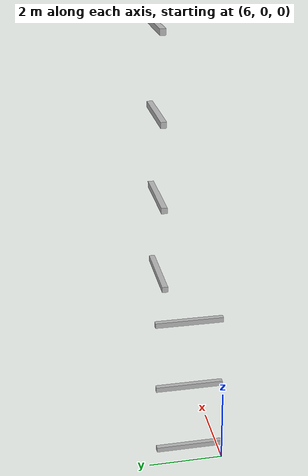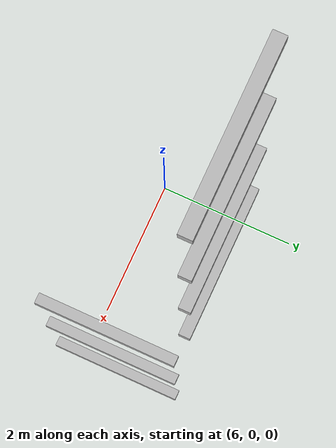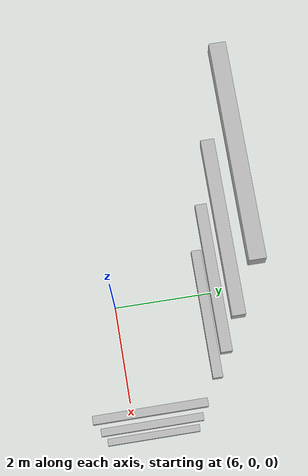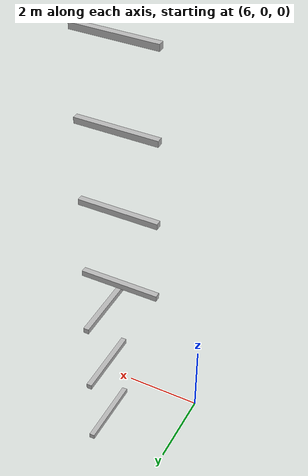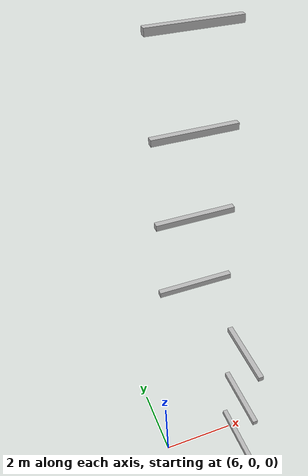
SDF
<sdf version="1.7">
 <world name="default">
  <model name="orthogonal_747_2.000.15_TS">
   <static>1</static>
   <link name="y_link_0_2_7">
    <inertial>
     <mass>1</mass>
     <inertia>
      <ixx>0.166667</ixx>
      <ixy>0</ixy>
      <ixz>0</ixz>
      <iyy>0.166667</iyy>
      <iyz>0</iyz>
      <izz>0.166667</izz>
     </inertia>
    </inertial>
    <pose>15.05 5.375 1.075 0 -0 0</pose>
    <visual name="visual_0">
     <laser_retro>470</laser_retro>
     <geometry><box><size>0.15 1e-06 0.15</size></box></geometry>
     <material>
      <script><name>Gazebo/Grey</name><uri>file://media/materials/scripts/gazebo.material</uri></script>
      <shader type="pixel"><normal_map>__default__</normal_map></shader>
      <ambient>0.678 0.498 0.659 1</ambient>
      <diffuse>0.7 0.7 0.7 1</diffuse>
      <specular>0.01 0.01 0.01 1</specular>
      <emissive>0 0 0 1</emissive>
     </material>
     <pose>0 -1 0 0 -0 0</pose>
     <transparency>1</transparency>
    </visual>
    <visual name="visual_1">
     <laser_retro>471</laser_retro>
     <geometry><box><size>0.15 1e-06 0.15</size></box></geometry>
     <material>
      <script><name>Gazebo/Grey</name><uri>file://media/materials/scripts/gazebo.material</uri></script>
      <shader type="pixel"><normal_map>__default__</normal_map></shader>
      <ambient>0.447 0.624 0.812 1</ambient>
      <diffuse>0.7 0.7 0.7 1</diffuse>
      <specular>0.01 0.01 0.01 1</specular>
      <emissive>0 0 0 1</emissive>
     </material>
     <pose>0 1 0 0 -0 0</pose>
     <transparency>1</transparency>
    </visual>
    <visual name="visual_2">
     <laser_retro>472</laser_retro>
     <geometry><box><size>0.15 2 1e-06</size></box></geometry>
     <material>
      <script><name>Gazebo/Grey</name><uri>file://media/materials/scripts/gazebo.material</uri></script>
      <shader type="pixel"><normal_map>__default__</normal_map></shader>
      <ambient>0.988 0.686 0.243 1</ambient>
      <diffuse>0.7 0.7 0.7 1</diffuse>
      <specular>0.01 0.01 0.01 1</specular>
      <emissive>0 0 0 1</emissive>
     </material>
     <pose>0 0 -0.075 0 -0 0</pose>
     <transparency>1</transparency>
    </visual>
    <visual name="visual_3">
     <laser_retro>473</laser_retro>
     <geometry><box><size>1e-06 2 0.15</size></box></geometry>
     <material>
      <script><name>Gazebo/Grey</name><uri>file://media/materials/scripts/gazebo.material</uri></script>
      <shader type="pixel"><normal_map>__default__</normal_map></shader>
      <ambient>0.988 0.914 0.31 1</ambient>
      <diffuse>0.7 0.7 0.7 1</diffuse>
      <specular>0.01 0.01 0.01 1</specular>
      <emissive>0 0 0 1</emissive>
     </material>
     <pose>0.075 0 0 0 -0 0</pose>
     <transparency>1</transparency>
    </visual>
    <visual name="visual_4">
     <laser_retro>474</laser_retro>
     <geometry><box><size>0.15 2 1e-06</size></box></geometry>
     <material>
      <script><name>Gazebo/Grey</name><uri>file://media/materials/scripts/gazebo.material</uri></script>
      <shader type="pixel"><normal_map>__default__</normal_map></shader>
      <ambient>0.937 0.161 0.161 1</ambient>
      <diffuse>0.7 0.7 0.7 1</diffuse>
      <specular>0.01 0.01 0.01 1</specular>
      <emissive>0 0 0 1</emissive>
     </material>
     <pose>0 0 0.075 0 -0 0</pose>
     <transparency>1</transparency>
    </visual>
    <visual name="visual_5">
     <laser_retro>475</laser_retro>
     <geometry><box><size>1e-06 2 0.15</size></box></geometry>
     <material>
      <script><name>Gazebo/Grey</name><uri>file://media/materials/scripts/gazebo.material</uri></script>
      <shader type="pixel"><normal_map>__default__</normal_map></shader>
      <ambient>0.541 0.886 0.204 1</ambient>
      <diffuse>0.7 0.7 0.7 1</diffuse>
      <specular>0.01 0.01 0.01 1</specular>
      <emissive>0 0 0 1</emissive>
     </material>
     <pose>-0.075 0 0 0 -0 0</pose>
     <transparency>1</transparency>
    </visual>
    <visual name="visual_texture">
     <geometry><box><size>0.149985 1.9998 0.149985</size></box></geometry>
     <material>
      <script>
       <uri>model://BASE_MODELS/simple_block_v2_textured/materials/scripts</uri>
       <uri>model://BASE_MODELS/simple_block_v2_textured/materials/textures</uri>
       <name>metal</name>
      </script>
     </material>
     <laser_retro>476</laser_retro>
    </visual>
    <collision name="collision">
     <geometry><box><size>0.15 2 0.15</size></box></geometry>
     <surface>
      <friction>
       <ode><mu>1</mu><mu2>1</mu2><fdir1>0 0 0</fdir1><slip1>0</slip1><slip2>0</slip2></ode>
       <torsional>
        <coefficient>1</coefficient>
        <patch_radius>0</patch_radius>
        <surface_radius>0</surface_radius>
        <use_patch_radius>1</use_patch_radius>
        <ode><slip>0</slip></ode>
       </torsional>
      </friction>
      <bounce><restitution_coefficient>0</restitution_coefficient><threshold>1e+06</threshold></bounce>
      <contact>
       <collide_without_contact>0</collide_without_contact>
       <collide_without_contact_bitmask>1</collide_without_contact_bitmask>
       <collide_bitmask>1</collide_bitmask>
       <ode>
        <soft_cfm>0</soft_cfm>
        <soft_erp>0.2</soft_erp>
        <kp>1e+13</kp>
        <kd>1</kd>
        <max_vel>0.01</max_vel>
        <min_depth>0</min_depth>
       </ode>
       <bullet>
        <split_impulse>1</split_impulse>
        <split_impulse_penetration_threshold>-0.01</split_impulse_penetration_threshold>
        <soft_cfm>0</soft_cfm>
        <soft_erp>0.2</soft_erp>
        <kp>1e+13</kp>
        <kd>1</kd>
       </bullet>
      </contact>
     </surface>
    </collision>
   </link>
   <link name="y_link_1_2_7">
    <inertial>
     <mass>1</mass>
     <inertia>
      <ixx>0.166667</ixx>
      <ixy>0</ixy>
      <ixz>0</ixz>
      <iyy>0.166667</iyy>
      <iyz>0</iyz>
      <izz>0.166667</izz>
     </inertia>
    </inertial>
    <pose>15.05 5.375 3.225 0 -0 0</pose>
    <visual name="visual_0">
     <laser_retro>1296</laser_retro>
     <geometry><box><size>0.15 1e-06 0.15</size></box></geometry>
     <material>
      <script><name>Gazebo/Grey</name><uri>file://media/materials/scripts/gazebo.material</uri></script>
      <shader type="pixel"><normal_map>__default__</normal_map></shader>
      <ambient>0.678 0.498 0.659 1</ambient>
      <diffuse>0.7 0.7 0.7 1</diffuse>
      <specular>0.01 0.01 0.01 1</specular>
      <emissive>0 0 0 1</emissive>
     </material>
     <pose>0 -1 0 0 -0 0</pose>
     <transparency>1</transparency>
    </visual>
    <visual name="visual_1">
     <laser_retro>1297</laser_retro>
     <geometry><box><size>0.15 1e-06 0.15</size></box></geometry>
     <material>
      <script><name>Gazebo/Grey</name><uri>file://media/materials/scripts/gazebo.material</uri></script>
      <shader type="pixel"><normal_map>__default__</normal_map></shader>
      <ambient>0.447 0.624 0.812 1</ambient>
      <diffuse>0.7 0.7 0.7 1</diffuse>
      <specular>0.01 0.01 0.01 1</specular>
      <emissive>0 0 0 1</emissive>
     </material>
     <pose>0 1 0 0 -0 0</pose>
     <transparency>1</transparency>
    </visual>
    <visual name="visual_2">
     <laser_retro>1298</laser_retro>
     <geometry><box><size>0.15 2 1e-06</size></box></geometry>
     <material>
      <script><name>Gazebo/Grey</name><uri>file://media/materials/scripts/gazebo.material</uri></script>
      <shader type="pixel"><normal_map>__default__</normal_map></shader>
      <ambient>0.988 0.686 0.243 1</ambient>
      <diffuse>0.7 0.7 0.7 1</diffuse>
      <specular>0.01 0.01 0.01 1</specular>
      <emissive>0 0 0 1</emissive>
     </material>
     <pose>0 0 -0.075 0 -0 0</pose>
     <transparency>1</transparency>
    </visual>
    <visual name="visual_3">
     <laser_retro>1299</laser_retro>
     <geometry><box><size>1e-06 2 0.15</size></box></geometry>
     <material>
      <script><name>Gazebo/Grey</name><uri>file://media/materials/scripts/gazebo.material</uri></script>
      <shader type="pixel"><normal_map>__default__</normal_map></shader>
      <ambient>0.988 0.914 0.31 1</ambient>
      <diffuse>0.7 0.7 0.7 1</diffuse>
      <specular>0.01 0.01 0.01 1</specular>
      <emissive>0 0 0 1</emissive>
     </material>
     <pose>0.075 0 0 0 -0 0</pose>
     <transparency>1</transparency>
    </visual>
    <visual name="visual_4">
     <laser_retro>1300</laser_retro>
     <geometry><box><size>0.15 2 1e-06</size></box></geometry>
     <material>
      <script><name>Gazebo/Grey</name><uri>file://media/materials/scripts/gazebo.material</uri></script>
      <shader type="pixel"><normal_map>__default__</normal_map></shader>
      <ambient>0.937 0.161 0.161 1</ambient>
      <diffuse>0.7 0.7 0.7 1</diffuse>
      <specular>0.01 0.01 0.01 1</specular>
      <emissive>0 0 0 1</emissive>
     </material>
     <pose>0 0 0.075 0 -0 0</pose>
     <transparency>1</transparency>
    </visual>
    <visual name="visual_5">
     <laser_retro>1301</laser_retro>
     <geometry><box><size>1e-06 2 0.15</size></box></geometry>
     <material>
      <script><name>Gazebo/Grey</name><uri>file://media/materials/scripts/gazebo.material</uri></script>
      <shader type="pixel"><normal_map>__default__</normal_map></shader>
      <ambient>0.541 0.886 0.204 1</ambient>
      <diffuse>0.7 0.7 0.7 1</diffuse>
      <specular>0.01 0.01 0.01 1</specular>
      <emissive>0 0 0 1</emissive>
     </material>
     <pose>-0.075 0 0 0 -0 0</pose>
     <transparency>1</transparency>
    </visual>
    <visual name="visual_texture">
     <geometry><box><size>0.149985 1.9998 0.149985</size></box></geometry>
     <material>
      <script>
       <uri>model://BASE_MODELS/simple_block_v2_textured/materials/scripts</uri>
       <uri>model://BASE_MODELS/simple_block_v2_textured/materials/textures</uri>
       <name>metal</name>
      </script>
     </material>
     <laser_retro>1302</laser_retro>
    </visual>
    <collision name="collision">
     <geometry><box><size>0.15 2 0.15</size></box></geometry>
     <surface>
      <friction>
       <ode><mu>1</mu><mu2>1</mu2><fdir1>0 0 0</fdir1><slip1>0</slip1><slip2>0</slip2></ode>
       <torsional>
        <coefficient>1</coefficient>
        <patch_radius>0</patch_radius>
        <surface_radius>0</surface_radius>
        <use_patch_radius>1</use_patch_radius>
        <ode><slip>0</slip></ode>
       </torsional>
      </friction>
      <bounce><restitution_coefficient>0</restitution_coefficient><threshold>1e+06</threshold></bounce>
      <contact>
       <collide_without_contact>0</collide_without_contact>
       <collide_without_contact_bitmask>1</collide_without_contact_bitmask>
       <collide_bitmask>1</collide_bitmask>
       <ode>
        <soft_cfm>0</soft_cfm>
        <soft_erp>0.2</soft_erp>
        <kp>1e+13</kp>
        <kd>1</kd>
        <max_vel>0.01</max_vel>
        <min_depth>0</min_depth>
       </ode>
       <bullet>
        <split_impulse>1</split_impulse>
        <split_impulse_penetration_threshold>-0.01</split_impulse_penetration_threshold>
        <soft_cfm>0</soft_cfm>
        <soft_erp>0.2</soft_erp>
        <kp>1e+13</kp>
        <kd>1</kd>
       </bullet>
      </contact>
     </surface>
    </collision>
   </link>
   <link name="y_link_2_2_7">
    <inertial>
     <mass>1</mass>
     <inertia>
      <ixx>0.166667</ixx>
      <ixy>0</ixy>
      <ixz>0</ixz>
      <iyy>0.166667</iyy>
      <iyz>0</iyz>
      <izz>0.166667</izz>
     </inertia>
    </inertial>
    <pose>15.05 5.375 5.375 0 -0 0</pose>
    <visual name="visual_0">
     <laser_retro>2199</laser_retro>
     <geometry><box><size>0.15 1e-06 0.15</size></box></geometry>
     <material>
      <script><name>Gazebo/Grey</name><uri>file://media/materials/scripts/gazebo.material</uri></script>
      <shader type="pixel"><normal_map>__default__</normal_map></shader>
      <ambient>0.678 0.498 0.659 1</ambient>
      <diffuse>0.7 0.7 0.7 1</diffuse>
      <specular>0.01 0.01 0.01 1</specular>
      <emissive>0 0 0 1</emissive>
     </material>
     <pose>0 -1 0 0 -0 0</pose>
     <transparency>1</transparency>
    </visual>
    <visual name="visual_1">
     <laser_retro>2200</laser_retro>
     <geometry><box><size>0.15 1e-06 0.15</size></box></geometry>
     <material>
      <script><name>Gazebo/Grey</name><uri>file://media/materials/scripts/gazebo.material</uri></script>
      <shader type="pixel"><normal_map>__default__</normal_map></shader>
      <ambient>0.447 0.624 0.812 1</ambient>
      <diffuse>0.7 0.7 0.7 1</diffuse>
      <specular>0.01 0.01 0.01 1</specular>
      <emissive>0 0 0 1</emissive>
     </material>
     <pose>0 1 0 0 -0 0</pose>
     <transparency>1</transparency>
    </visual>
    <visual name="visual_2">
     <laser_retro>2201</laser_retro>
     <geometry><box><size>0.15 2 1e-06</size></box></geometry>
     <material>
      <script><name>Gazebo/Grey</name><uri>file://media/materials/scripts/gazebo.material</uri></script>
      <shader type="pixel"><normal_map>__default__</normal_map></shader>
      <ambient>0.988 0.686 0.243 1</ambient>
      <diffuse>0.7 0.7 0.7 1</diffuse>
      <specular>0.01 0.01 0.01 1</specular>
      <emissive>0 0 0 1</emissive>
     </material>
     <pose>0 0 -0.075 0 -0 0</pose>
     <transparency>1</transparency>
    </visual>
    <visual name="visual_3">
     <laser_retro>2202</laser_retro>
     <geometry><box><size>1e-06 2 0.15</size></box></geometry>
     <material>
      <script><name>Gazebo/Grey</name><uri>file://media/materials/scripts/gazebo.material</uri></script>
      <shader type="pixel"><normal_map>__default__</normal_map></shader>
      <ambient>0.988 0.914 0.31 1</ambient>
      <diffuse>0.7 0.7 0.7 1</diffuse>
      <specular>0.01 0.01 0.01 1</specular>
      <emissive>0 0 0 1</emissive>
     </material>
     <pose>0.075 0 0 0 -0 0</pose>
     <transparency>1</transparency>
    </visual>
    <visual name="visual_4">
     <laser_retro>2203</laser_retro>
     <geometry><box><size>0.15 2 1e-06</size></box></geometry>
     <material>
      <script><name>Gazebo/Grey</name><uri>file://media/materials/scripts/gazebo.material</uri></script>
      <shader type="pixel"><normal_map>__default__</normal_map></shader>
      <ambient>0.937 0.161 0.161 1</ambient>
      <diffuse>0.7 0.7 0.7 1</diffuse>
      <specular>0.01 0.01 0.01 1</specular>
      <emissive>0 0 0 1</emissive>
     </material>
     <pose>0 0 0.075 0 -0 0</pose>
     <transparency>1</transparency>
    </visual>
    <visual name="visual_5">
     <laser_retro>2204</laser_retro>
     <geometry><box><size>1e-06 2 0.15</size></box></geometry>
     <material>
      <script><name>Gazebo/Grey</name><uri>file://media/materials/scripts/gazebo.material</uri></script>
      <shader type="pixel"><normal_map>__default__</normal_map></shader>
      <ambient>0.541 0.886 0.204 1</ambient>
      <diffuse>0.7 0.7 0.7 1</diffuse>
      <specular>0.01 0.01 0.01 1</specular>
      <emissive>0 0 0 1</emissive>
     </material>
     <pose>-0.075 0 0 0 -0 0</pose>
     <transparency>1</transparency>
    </visual>
    <visual name="visual_texture">
     <geometry><box><size>0.149985 1.9998 0.149985</size></box></geometry>
     <material>
      <script>
       <uri>model://BASE_MODELS/simple_block_v2_textured/materials/scripts</uri>
       <uri>model://BASE_MODELS/simple_block_v2_textured/materials/textures</uri>
       <name>metal</name>
      </script>
     </material>
     <laser_retro>2205</laser_retro>
    </visual>
    <collision name="collision">
     <geometry><box><size>0.15 2 0.15</size></box></geometry>
     <surface>
      <friction>
       <ode><mu>1</mu><mu2>1</mu2><fdir1>0 0 0</fdir1><slip1>0</slip1><slip2>0</slip2></ode>
       <torsional>
        <coefficient>1</coefficient>
        <patch_radius>0</patch_radius>
        <surface_radius>0</surface_radius>
        <use_patch_radius>1</use_patch_radius>
        <ode><slip>0</slip></ode>
       </torsional>
      </friction>
      <bounce><restitution_coefficient>0</restitution_coefficient><threshold>1e+06</threshold></bounce>
      <contact>
       <collide_without_contact>0</collide_without_contact>
       <collide_without_contact_bitmask>1</collide_without_contact_bitmask>
       <collide_bitmask>1</collide_bitmask>
       <ode>
        <soft_cfm>0</soft_cfm>
        <soft_erp>0.2</soft_erp>
        <kp>1e+13</kp>
        <kd>1</kd>
        <max_vel>0.01</max_vel>
        <min_depth>0</min_depth>
       </ode>
       <bullet>
        <split_impulse>1</split_impulse>
        <split_impulse_penetration_threshold>-0.01</split_impulse_penetration_threshold>
        <soft_cfm>0</soft_cfm>
        <soft_erp>0.2</soft_erp>
        <kp>1e+13</kp>
        <kd>1</kd>
       </bullet>
      </contact>
     </surface>
    </collision>
   </link>
   <link name="x_link_3_3_6">
    <inertial>
     <mass>1</mass>
     <inertia>
      <ixx>0.166667</ixx>
      <ixy>0</ixy>
      <ixz>0</ixz>
      <iyy>0.166667</iyy>
      <iyz>0</iyz>
      <izz>0.166667</izz>
     </inertia>
    </inertial>
    <pose>13.975 6.45 7.525 0 -0 0</pose>
    <visual name="visual_0">
     <laser_retro>3256</laser_retro>
     <geometry><box><size>2 1e-06 0.15</size></box></geometry>
     <material>
      <script><name>Gazebo/Grey</name><uri>file://media/materials/scripts/gazebo.material</uri></script>
      <shader type="pixel"><normal_map>__default__</normal_map></shader>
      <ambient>0.678 0.498 0.659 1</ambient>
      <diffuse>0.7 0.7 0.7 1</diffuse>
      <specular>0.01 0.01 0.01 1</specular>
      <emissive>0 0 0 1</emissive>
     </material>
     <pose>0 -0.075 0 0 -0 0</pose>
     <transparency>1</transparency>
    </visual>
    <visual name="visual_1">
     <laser_retro>3257</laser_retro>
     <geometry><box><size>2 1e-06 0.15</size></box></geometry>
     <material>
      <script><name>Gazebo/Grey</name><uri>file://media/materials/scripts/gazebo.material</uri></script>
      <shader type="pixel"><normal_map>__default__</normal_map></shader>
      <ambient>0.447 0.624 0.812 1</ambient>
      <diffuse>0.7 0.7 0.7 1</diffuse>
      <specular>0.01 0.01 0.01 1</specular>
      <emissive>0 0 0 1</emissive>
     </material>
     <pose>0 0.075 0 0 -0 0</pose>
     <transparency>1</transparency>
    </visual>
    <visual name="visual_2">
     <laser_retro>3258</laser_retro>
     <geometry><box><size>2 0.15 1e-06</size></box></geometry>
     <material>
      <script><name>Gazebo/Grey</name><uri>file://media/materials/scripts/gazebo.material</uri></script>
      <shader type="pixel"><normal_map>__default__</normal_map></shader>
      <ambient>0.988 0.686 0.243 1</ambient>
      <diffuse>0.7 0.7 0.7 1</diffuse>
      <specular>0.01 0.01 0.01 1</specular>
      <emissive>0 0 0 1</emissive>
     </material>
     <pose>0 0 -0.075 0 -0 0</pose>
     <transparency>1</transparency>
    </visual>
    <visual name="visual_3">
     <laser_retro>3259</laser_retro>
     <geometry><box><size>1e-06 0.15 0.15</size></box></geometry>
     <material>
      <script><name>Gazebo/Grey</name><uri>file://media/materials/scripts/gazebo.material</uri></script>
      <shader type="pixel"><normal_map>__default__</normal_map></shader>
      <ambient>0.988 0.914 0.31 1</ambient>
      <diffuse>0.7 0.7 0.7 1</diffuse>
      <specular>0.01 0.01 0.01 1</specular>
      <emissive>0 0 0 1</emissive>
     </material>
     <pose>1 0 0 0 -0 0</pose>
     <transparency>1</transparency>
    </visual>
    <visual name="visual_4">
     <laser_retro>3260</laser_retro>
     <geometry><box><size>2 0.15 1e-06</size></box></geometry>
     <material>
      <script><name>Gazebo/Grey</name><uri>file://media/materials/scripts/gazebo.material</uri></script>
      <shader type="pixel"><normal_map>__default__</normal_map></shader>
      <ambient>0.937 0.161 0.161 1</ambient>
      <diffuse>0.7 0.7 0.7 1</diffuse>
      <specular>0.01 0.01 0.01 1</specular>
      <emissive>0 0 0 1</emissive>
     </material>
     <pose>0 0 0.075 0 -0 0</pose>
     <transparency>1</transparency>
    </visual>
    <visual name="visual_5">
     <laser_retro>3261</laser_retro>
     <geometry><box><size>1e-06 0.15 0.15</size></box></geometry>
     <material>
      <script><name>Gazebo/Grey</name><uri>file://media/materials/scripts/gazebo.material</uri></script>
      <shader type="pixel"><normal_map>__default__</normal_map></shader>
      <ambient>0.541 0.886 0.204 1</ambient>
      <diffuse>0.7 0.7 0.7 1</diffuse>
      <specular>0.01 0.01 0.01 1</specular>
      <emissive>0 0 0 1</emissive>
     </material>
     <pose>-1 0 0 0 -0 0</pose>
     <transparency>1</transparency>
    </visual>
    <visual name="visual_texture">
     <geometry><box><size>1.9998 0.149985 0.149985</size></box></geometry>
     <material>
      <script>
       <uri>model://BASE_MODELS/simple_block_v2_textured/materials/scripts</uri>
       <uri>model://BASE_MODELS/simple_block_v2_textured/materials/textures</uri>
       <name>metal</name>
      </script>
     </material>
     <laser_retro>3262</laser_retro>
    </visual>
    <collision name="collision">
     <geometry><box><size>2 0.15 0.15</size></box></geometry>
     <surface>
      <friction>
       <ode><mu>1</mu><mu2>1</mu2><fdir1>0 0 0</fdir1><slip1>0</slip1><slip2>0</slip2></ode>
       <torsional>
        <coefficient>1</coefficient>
        <patch_radius>0</patch_radius>
        <surface_radius>0</surface_radius>
        <use_patch_radius>1</use_patch_radius>
        <ode><slip>0</slip></ode>
       </torsional>
      </friction>
      <bounce><restitution_coefficient>0</restitution_coefficient><threshold>1e+06</threshold></bounce>
      <contact>
       <collide_without_contact>0</collide_without_contact>
       <collide_without_contact_bitmask>1</collide_without_contact_bitmask>
       <collide_bitmask>1</collide_bitmask>
       <ode>
        <soft_cfm>0</soft_cfm>
        <soft_erp>0.2</soft_erp>
        <kp>1e+13</kp>
        <kd>1</kd>
        <max_vel>0.01</max_vel>
        <min_depth>0</min_depth>
       </ode>
       <bullet>
        <split_impulse>1</split_impulse>
        <split_impulse_penetration_threshold>-0.01</split_impulse_penetration_threshold>
        <soft_cfm>0</soft_cfm>
        <soft_erp>0.2</soft_erp>
        <kp>1e+13</kp>
        <kd>1</kd>
       </bullet>
      </contact>
     </surface>
    </collision>
   </link>
   <link name="x_link_4_3_6">
    <inertial>
     <mass>1</mass>
     <inertia>
      <ixx>0.166667</ixx>
      <ixy>0</ixy>
      <ixz>0</ixz>
      <iyy>0.166667</iyy>
      <iyz>0</iyz>
      <izz>0.166667</izz>
     </inertia>
    </inertial>
    <pose>13.975 6.45 9.675 0 -0 0</pose>
    <visual name="visual_0">
     <laser_retro>4159</laser_retro>
     <geometry><box><size>2 1e-06 0.15</size></box></geometry>
     <material>
      <script><name>Gazebo/Grey</name><uri>file://media/materials/scripts/gazebo.material</uri></script>
      <shader type="pixel"><normal_map>__default__</normal_map></shader>
      <ambient>0.678 0.498 0.659 1</ambient>
      <diffuse>0.7 0.7 0.7 1</diffuse>
      <specular>0.01 0.01 0.01 1</specular>
      <emissive>0 0 0 1</emissive>
     </material>
     <pose>0 -0.075 0 0 -0 0</pose>
     <transparency>1</transparency>
    </visual>
    <visual name="visual_1">
     <laser_retro>4160</laser_retro>
     <geometry><box><size>2 1e-06 0.15</size></box></geometry>
     <material>
      <script><name>Gazebo/Grey</name><uri>file://media/materials/scripts/gazebo.material</uri></script>
      <shader type="pixel"><normal_map>__default__</normal_map></shader>
      <ambient>0.447 0.624 0.812 1</ambient>
      <diffuse>0.7 0.7 0.7 1</diffuse>
      <specular>0.01 0.01 0.01 1</specular>
      <emissive>0 0 0 1</emissive>
     </material>
     <pose>0 0.075 0 0 -0 0</pose>
     <transparency>1</transparency>
    </visual>
    <visual name="visual_2">
     <laser_retro>4161</laser_retro>
     <geometry><box><size>2 0.15 1e-06</size></box></geometry>
     <material>
      <script><name>Gazebo/Grey</name><uri>file://media/materials/scripts/gazebo.material</uri></script>
      <shader type="pixel"><normal_map>__default__</normal_map></shader>
      <ambient>0.988 0.686 0.243 1</ambient>
      <diffuse>0.7 0.7 0.7 1</diffuse>
      <specular>0.01 0.01 0.01 1</specular>
      <emissive>0 0 0 1</emissive>
     </material>
     <pose>0 0 -0.075 0 -0 0</pose>
     <transparency>1</transparency>
    </visual>
    <visual name="visual_3">
     <laser_retro>4162</laser_retro>
     <geometry><box><size>1e-06 0.15 0.15</size></box></geometry>
     <material>
      <script><name>Gazebo/Grey</name><uri>file://media/materials/scripts/gazebo.material</uri></script>
      <shader type="pixel"><normal_map>__default__</normal_map></shader>
      <ambient>0.988 0.914 0.31 1</ambient>
      <diffuse>0.7 0.7 0.7 1</diffuse>
      <specular>0.01 0.01 0.01 1</specular>
      <emissive>0 0 0 1</emissive>
     </material>
     <pose>1 0 0 0 -0 0</pose>
     <transparency>1</transparency>
    </visual>
    <visual name="visual_4">
     <laser_retro>4163</laser_retro>
     <geometry><box><size>2 0.15 1e-06</size></box></geometry>
     <material>
      <script><name>Gazebo/Grey</name><uri>file://media/materials/scripts/gazebo.material</uri></script>
      <shader type="pixel"><normal_map>__default__</normal_map></shader>
      <ambient>0.937 0.161 0.161 1</ambient>
      <diffuse>0.7 0.7 0.7 1</diffuse>
      <specular>0.01 0.01 0.01 1</specular>
      <emissive>0 0 0 1</emissive>
     </material>
     <pose>0 0 0.075 0 -0 0</pose>
     <transparency>1</transparency>
    </visual>
    <visual name="visual_5">
     <laser_retro>4164</laser_retro>
     <geometry><box><size>1e-06 0.15 0.15</size></box></geometry>
     <material>
      <script><name>Gazebo/Grey</name><uri>file://media/materials/scripts/gazebo.material</uri></script>
      <shader type="pixel"><normal_map>__default__</normal_map></shader>
      <ambient>0.541 0.886 0.204 1</ambient>
      <diffuse>0.7 0.7 0.7 1</diffuse>
      <specular>0.01 0.01 0.01 1</specular>
      <emissive>0 0 0 1</emissive>
     </material>
     <pose>-1 0 0 0 -0 0</pose>
     <transparency>1</transparency>
    </visual>
    <visual name="visual_texture">
     <geometry><box><size>1.9998 0.149985 0.149985</size></box></geometry>
     <material>
      <script>
       <uri>model://BASE_MODELS/simple_block_v2_textured/materials/scripts</uri>
       <uri>model://BASE_MODELS/simple_block_v2_textured/materials/textures</uri>
       <name>metal</name>
      </script>
     </material>
     <laser_retro>4165</laser_retro>
    </visual>
    <collision name="collision">
     <geometry><box><size>2 0.15 0.15</size></box></geometry>
     <surface>
      <friction>
       <ode><mu>1</mu><mu2>1</mu2><fdir1>0 0 0</fdir1><slip1>0</slip1><slip2>0</slip2></ode>
       <torsional>
        <coefficient>1</coefficient>
        <patch_radius>0</patch_radius>
        <surface_radius>0</surface_radius>
        <use_patch_radius>1</use_patch_radius>
        <ode><slip>0</slip></ode>
       </torsional>
      </friction>
      <bounce><restitution_coefficient>0</restitution_coefficient><threshold>1e+06</threshold></bounce>
      <contact>
       <collide_without_contact>0</collide_without_contact>
       <collide_without_contact_bitmask>1</collide_without_contact_bitmask>
       <collide_bitmask>1</collide_bitmask>
       <ode>
        <soft_cfm>0</soft_cfm>
        <soft_erp>0.2</soft_erp>
        <kp>1e+13</kp>
        <kd>1</kd>
        <max_vel>0.01</max_vel>
        <min_depth>0</min_depth>
       </ode>
       <bullet>
        <split_impulse>1</split_impulse>
        <split_impulse_penetration_threshold>-0.01</split_impulse_penetration_threshold>
        <soft_cfm>0</soft_cfm>
        <soft_erp>0.2</soft_erp>
        <kp>1e+13</kp>
        <kd>1</kd>
       </bullet>
      </contact>
     </surface>
    </collision>
   </link>
   <link name="x_link_5_3_6">
    <inertial>
     <mass>1</mass>
     <inertia>
      <ixx>0.166667</ixx>
      <ixy>0</ixy>
      <ixz>0</ixz>
      <iyy>0.166667</iyy>
      <iyz>0</iyz>
      <izz>0.166667</izz>
     </inertia>
    </inertial>
    <pose>13.975 6.45 11.825 0 -0 0</pose>
    <visual name="visual_0">
     <laser_retro>5062</laser_retro>
     <geometry><box><size>2 1e-06 0.15</size></box></geometry>
     <material>
      <script><name>Gazebo/Grey</name><uri>file://media/materials/scripts/gazebo.material</uri></script>
      <shader type="pixel"><normal_map>__default__</normal_map></shader>
      <ambient>0.678 0.498 0.659 1</ambient>
      <diffuse>0.7 0.7 0.7 1</diffuse>
      <specular>0.01 0.01 0.01 1</specular>
      <emissive>0 0 0 1</emissive>
     </material>
     <pose>0 -0.075 0 0 -0 0</pose>
     <transparency>1</transparency>
    </visual>
    <visual name="visual_1">
     <laser_retro>5063</laser_retro>
     <geometry><box><size>2 1e-06 0.15</size></box></geometry>
     <material>
      <script><name>Gazebo/Grey</name><uri>file://media/materials/scripts/gazebo.material</uri></script>
      <shader type="pixel"><normal_map>__default__</normal_map></shader>
      <ambient>0.447 0.624 0.812 1</ambient>
      <diffuse>0.7 0.7 0.7 1</diffuse>
      <specular>0.01 0.01 0.01 1</specular>
      <emissive>0 0 0 1</emissive>
     </material>
     <pose>0 0.075 0 0 -0 0</pose>
     <transparency>1</transparency>
    </visual>
    <visual name="visual_2">
     <laser_retro>5064</laser_retro>
     <geometry><box><size>2 0.15 1e-06</size></box></geometry>
     <material>
      <script><name>Gazebo/Grey</name><uri>file://media/materials/scripts/gazebo.material</uri></script>
      <shader type="pixel"><normal_map>__default__</normal_map></shader>
      <ambient>0.988 0.686 0.243 1</ambient>
      <diffuse>0.7 0.7 0.7 1</diffuse>
      <specular>0.01 0.01 0.01 1</specular>
      <emissive>0 0 0 1</emissive>
     </material>
     <pose>0 0 -0.075 0 -0 0</pose>
     <transparency>1</transparency>
    </visual>
    <visual name="visual_3">
     <laser_retro>5065</laser_retro>
     <geometry><box><size>1e-06 0.15 0.15</size></box></geometry>
     <material>
      <script><name>Gazebo/Grey</name><uri>file://media/materials/scripts/gazebo.material</uri></script>
      <shader type="pixel"><normal_map>__default__</normal_map></shader>
      <ambient>0.988 0.914 0.31 1</ambient>
      <diffuse>0.7 0.7 0.7 1</diffuse>
      <specular>0.01 0.01 0.01 1</specular>
      <emissive>0 0 0 1</emissive>
     </material>
     <pose>1 0 0 0 -0 0</pose>
     <transparency>1</transparency>
    </visual>
    <visual name="visual_4">
     <laser_retro>5066</laser_retro>
     <geometry><box><size>2 0.15 1e-06</size></box></geometry>
     <material>
      <script><name>Gazebo/Grey</name><uri>file://media/materials/scripts/gazebo.material</uri></script>
      <shader type="pixel"><normal_map>__default__</normal_map></shader>
      <ambient>0.937 0.161 0.161 1</ambient>
      <diffuse>0.7 0.7 0.7 1</diffuse>
      <specular>0.01 0.01 0.01 1</specular>
      <emissive>0 0 0 1</emissive>
     </material>
     <pose>0 0 0.075 0 -0 0</pose>
     <transparency>1</transparency>
    </visual>
    <visual name="visual_5">
     <laser_retro>5067</laser_retro>
     <geometry><box><size>1e-06 0.15 0.15</size></box></geometry>
     <material>
      <script><name>Gazebo/Grey</name><uri>file://media/materials/scripts/gazebo.material</uri></script>
      <shader type="pixel"><normal_map>__default__</normal_map></shader>
      <ambient>0.541 0.886 0.204 1</ambient>
      <diffuse>0.7 0.7 0.7 1</diffuse>
      <specular>0.01 0.01 0.01 1</specular>
      <emissive>0 0 0 1</emissive>
     </material>
     <pose>-1 0 0 0 -0 0</pose>
     <transparency>1</transparency>
    </visual>
    <visual name="visual_texture">
     <geometry><box><size>1.9998 0.149985 0.149985</size></box></geometry>
     <material>
      <script>
       <uri>model://BASE_MODELS/simple_block_v2_textured/materials/scripts</uri>
       <uri>model://BASE_MODELS/simple_block_v2_textured/materials/textures</uri>
       <name>metal</name>
      </script>
     </material>
     <laser_retro>5068</laser_retro>
    </visual>
    <collision name="collision">
     <geometry><box><size>2 0.15 0.15</size></box></geometry>
     <surface>
      <friction>
       <ode><mu>1</mu><mu2>1</mu2><fdir1>0 0 0</fdir1><slip1>0</slip1><slip2>0</slip2></ode>
       <torsional>
        <coefficient>1</coefficient>
        <patch_radius>0</patch_radius>
        <surface_radius>0</surface_radius>
        <use_patch_radius>1</use_patch_radius>
        <ode><slip>0</slip></ode>
       </torsional>
      </friction>
      <bounce><restitution_coefficient>0</restitution_coefficient><threshold>1e+06</threshold></bounce>
      <contact>
       <collide_without_contact>0</collide_without_contact>
       <collide_without_contact_bitmask>1</collide_without_contact_bitmask>
       <collide_bitmask>1</collide_bitmask>
       <ode>
        <soft_cfm>0</soft_cfm>
        <soft_erp>0.2</soft_erp>
        <kp>1e+13</kp>
        <kd>1</kd>
        <max_vel>0.01</max_vel>
        <min_depth>0</min_depth>
       </ode>
       <bullet>
        <split_impulse>1</split_impulse>
        <split_impulse_penetration_threshold>-0.01</split_impulse_penetration_threshold>
        <soft_cfm>0</soft_cfm>
        <soft_erp>0.2</soft_erp>
        <kp>1e+13</kp>
        <kd>1</kd>
       </bullet>
      </contact>
     </surface>
    </collision>
   </link>
   <link name="x_link_6_3_6">
    <inertial>
     <mass>1</mass>
     <inertia>
      <ixx>0.166667</ixx>
      <ixy>0</ixy>
      <ixz>0</ixz>
      <iyy>0.166667</iyy>
      <iyz>0</iyz>
      <izz>0.166667</izz>
     </inertia>
    </inertial>
    <pose>13.975 6.45 13.975 0 -0 0</pose>
    <visual name="visual_0">
     <laser_retro>6084</laser_retro>
     <geometry><box><size>2 1e-06 0.15</size></box></geometry>
     <material>
      <script><name>Gazebo/Grey</name><uri>file://media/materials/scripts/gazebo.material</uri></script>
      <shader type="pixel"><normal_map>__default__</normal_map></shader>
      <ambient>0.678 0.498 0.659 1</ambient>
      <diffuse>0.7 0.7 0.7 1</diffuse>
      <specular>0.01 0.01 0.01 1</specular>
      <emissive>0 0 0 1</emissive>
     </material>
     <pose>0 -0.075 0 0 -0 0</pose>
     <transparency>1</transparency>
    </visual>
    <visual name="visual_1">
     <laser_retro>6085</laser_retro>
     <geometry><box><size>2 1e-06 0.15</size></box></geometry>
     <material>
      <script><name>Gazebo/Grey</name><uri>file://media/materials/scripts/gazebo.material</uri></script>
      <shader type="pixel"><normal_map>__default__</normal_map></shader>
      <ambient>0.447 0.624 0.812 1</ambient>
      <diffuse>0.7 0.7 0.7 1</diffuse>
      <specular>0.01 0.01 0.01 1</specular>
      <emissive>0 0 0 1</emissive>
     </material>
     <pose>0 0.075 0 0 -0 0</pose>
     <transparency>1</transparency>
    </visual>
    <visual name="visual_2">
     <laser_retro>6086</laser_retro>
     <geometry><box><size>2 0.15 1e-06</size></box></geometry>
     <material>
      <script><name>Gazebo/Grey</name><uri>file://media/materials/scripts/gazebo.material</uri></script>
      <shader type="pixel"><normal_map>__default__</normal_map></shader>
      <ambient>0.988 0.686 0.243 1</ambient>
      <diffuse>0.7 0.7 0.7 1</diffuse>
      <specular>0.01 0.01 0.01 1</specular>
      <emissive>0 0 0 1</emissive>
     </material>
     <pose>0 0 -0.075 0 -0 0</pose>
     <transparency>1</transparency>
    </visual>
    <visual name="visual_3">
     <laser_retro>6087</laser_retro>
     <geometry><box><size>1e-06 0.15 0.15</size></box></geometry>
     <material>
      <script><name>Gazebo/Grey</name><uri>file://media/materials/scripts/gazebo.material</uri></script>
      <shader type="pixel"><normal_map>__default__</normal_map></shader>
      <ambient>0.988 0.914 0.31 1</ambient>
      <diffuse>0.7 0.7 0.7 1</diffuse>
      <specular>0.01 0.01 0.01 1</specular>
      <emissive>0 0 0 1</emissive>
     </material>
     <pose>1 0 0 0 -0 0</pose>
     <transparency>1</transparency>
    </visual>
    <visual name="visual_4">
     <laser_retro>6088</laser_retro>
     <geometry><box><size>2 0.15 1e-06</size></box></geometry>
     <material>
      <script><name>Gazebo/Grey</name><uri>file://media/materials/scripts/gazebo.material</uri></script>
      <shader type="pixel"><normal_map>__default__</normal_map></shader>
      <ambient>0.937 0.161 0.161 1</ambient>
      <diffuse>0.7 0.7 0.7 1</diffuse>
      <specular>0.01 0.01 0.01 1</specular>
      <emissive>0 0 0 1</emissive>
     </material>
     <pose>0 0 0.075 0 -0 0</pose>
     <transparency>1</transparency>
    </visual>
    <visual name="visual_5">
     <laser_retro>6089</laser_retro>
     <geometry><box><size>1e-06 0.15 0.15</size></box></geometry>
     <material>
      <script><name>Gazebo/Grey</name><uri>file://media/materials/scripts/gazebo.material</uri></script>
      <shader type="pixel"><normal_map>__default__</normal_map></shader>
      <ambient>0.541 0.886 0.204 1</ambient>
      <diffuse>0.7 0.7 0.7 1</diffuse>
      <specular>0.01 0.01 0.01 1</specular>
      <emissive>0 0 0 1</emissive>
     </material>
     <pose>-1 0 0 0 -0 0</pose>
     <transparency>1</transparency>
    </visual>
    <visual name="visual_texture">
     <geometry><box><size>1.9998 0.149985 0.149985</size></box></geometry>
     <material>
      <script>
       <uri>model://BASE_MODELS/simple_block_v2_textured/materials/scripts</uri>
       <uri>model://BASE_MODELS/simple_block_v2_textured/materials/textures</uri>
       <name>metal</name>
      </script>
     </material>
     <laser_retro>6090</laser_retro>
    </visual>
    <collision name="collision">
     <geometry><box><size>2 0.15 0.15</size></box></geometry>
     <surface>
      <friction>
       <ode><mu>1</mu><mu2>1</mu2><fdir1>0 0 0</fdir1><slip1>0</slip1><slip2>0</slip2></ode>
       <torsional>
        <coefficient>1</coefficient>
        <patch_radius>0</patch_radius>
        <surface_radius>0</surface_radius>
        <use_patch_radius>1</use_patch_radius>
        <ode><slip>0</slip></ode>
       </torsional>
      </friction>
      <bounce><restitution_coefficient>0</restitution_coefficient><threshold>1e+06</threshold></bounce>
      <contact>
       <collide_without_contact>0</collide_without_contact>
       <collide_without_contact_bitmask>1</collide_without_contact_bitmask>
       <collide_bitmask>1</collide_bitmask>
       <ode>
        <soft_cfm>0</soft_cfm>
        <soft_erp>0.2</soft_erp>
        <kp>1e+13</kp>
        <kd>1</kd>
        <max_vel>0.01</max_vel>
        <min_depth>0</min_depth>
       </ode>
       <bullet>
        <split_impulse>1</split_impulse>
        <split_impulse_penetration_threshold>-0.01</split_impulse_penetration_threshold>
        <soft_cfm>0</soft_cfm>
        <soft_erp>0.2</soft_erp>
        <kp>1e+13</kp>
        <kd>1</kd>
       </bullet>
      </contact>
     </surface>
    </collision>
   </link>
   <pose>-6.47624 -5 -2.5 0 -0 0</pose>
  </model>
 </world>
</sdf>
